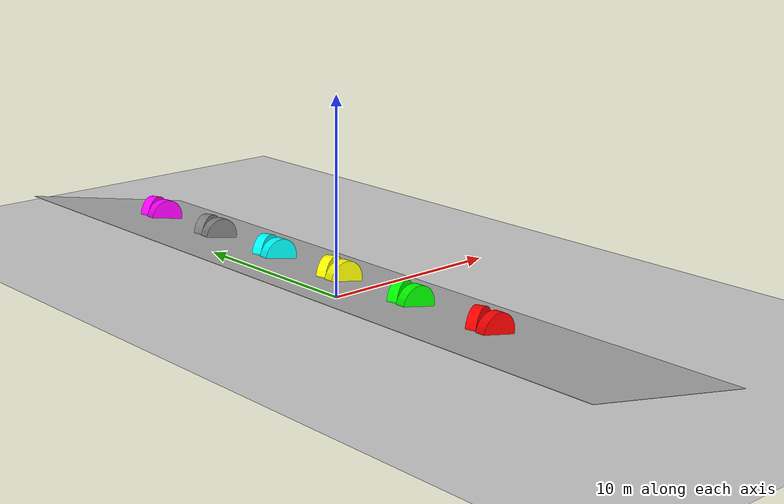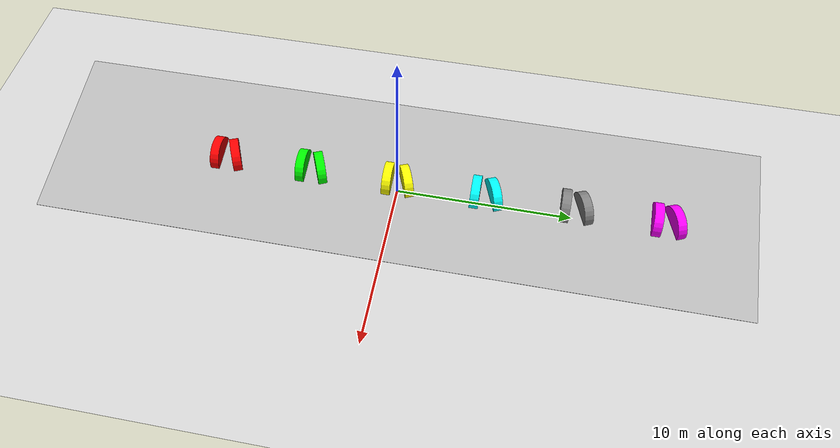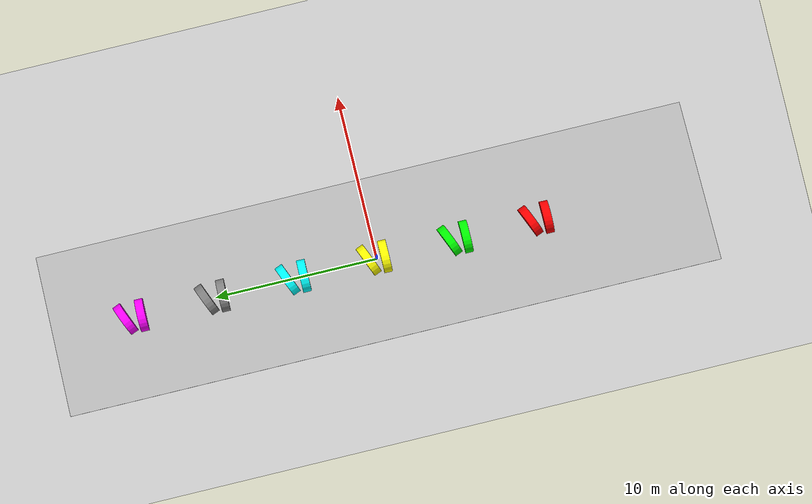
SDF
<?xml version="1.0" ?>
<!-- |    This document was autogenerated by xacro from xacro/friction_wheel_test.xacro | -->
<!-- |    EDITING THIS FILE BY HAND IS NOT RECOMMENDED                                 | -->
<sdf version="1.7">
  <world name="friction_wheel_test">
    <plugin filename="gz-sim-physics-system" name="gz::sim::systems::Physics"/>
    <plugin filename="gz-sim-user-commands-system" name="gz::sim::systems::UserCommands"/>
    <plugin filename="gz-sim-scene-broadcaster-system" name="gz::sim::systems::SceneBroadcaster"/>
    <light name="sun" type="directional">
      <cast_shadows>1</cast_shadows>
      <pose>0 0 10 0 -0 0</pose>
      <diffuse>0.8 0.8 0.8 1</diffuse>
      <specular>0.2 0.2 0.2 1</specular>
      <attenuation>
        <range>1000</range>
        <constant>0.9</constant>
        <linear>0.01</linear>
        <quadratic>0.001</quadratic>
      </attenuation>
      <direction>-0.5 0.1 -0.9</direction>
      <spot>
        <inner_angle>0</inner_angle>
        <outer_angle>0</outer_angle>
        <falloff>0</falloff>
      </spot>
    </light>
    <model name="ground_plane">
      <static>1</static>
      <pose>0 0 0 0 0 0</pose>
      <link name="link">
        <collision name="collision">
          <geometry>
            <plane>
              <normal>0 0 1</normal>
              <size>100 100</size>
            </plane>
          </geometry>
          <surface>
            <friction>
              <ode/>
            </friction>
            <contact/>
          </surface>
        </collision>
        <visual name="visual">
          <geometry>
            <plane>
              <normal>0 0 1</normal>
              <size>100 100</size>
            </plane>
          </geometry>
          <material>
            <ambient>0.8 0.8 0.8 1</ambient>
            <diffuse>0.8 0.8 0.8 1</diffuse>
            <specular>0.8 0.8 0.8 1</specular>
          </material>
        </visual>
      </link>
    </model>
    <model name="ramp">
      <pose>0 0 1 0 0.19634954084936207 0</pose>
      <static>1</static>
      <link name="ramp_link">
        <pose>0 0 0 0 0 0</pose>
        <collision name="ramp_collision">
          <pose relative_to="ramp_link">0 0 0 0 0 0</pose>
          <geometry>
            <box>
              <size>10 40 0.02</size>
            </box>
          </geometry>
          <surface>
            <contact>
              <ode>
                <kp>1e+06</kp>
                <kd>1</kd>
              </ode>
            </contact>
            <friction>
              <ode>
                <mu>1</mu>
                <mu2>1</mu2>
              </ode>
            </friction>
          </surface>
        </collision>
        <visual name="ramp_visual">
          <pose>0 0 0 0 0 0</pose>
          <geometry>
            <box>
              <size>10 40 0.02</size>
            </box>
          </geometry>
          <material>
            <ambient> .3 .3 .3 1.0</ambient>
            <diffuse> .7 .7 .7 1.0</diffuse>
            <specular> 0.01 0.01 0.01 1.000000</specular>
          </material>
        </visual>
        <gravity>0</gravity>
        <velocity_decay/>
      </link>
    </model>
    <model name="wheel_mu_no_fdir">
      <pose relative_to="ramp">0 -10.5 1 1.5707963267948966 0 0</pose>
      <link name="wheel_mu_no_fdir_link">
        <inertial>
          <pose>0 0 0 0 0 0</pose>
          <mass>1</mass>
          <inertia>
            <ixx>0.2708333333333333</ixx>
            <ixy>0</ixy>
            <ixz>0</ixz>
            <iyy>0.2708333333333333</iyy>
            <iyz>0</iyz>
            <izz>0.5</izz>
          </inertia>
        </inertial>
        <collision name="wheel_mu_no_fdir_collision">
          <pose>0 0 0 0 0 0</pose>
          <geometry>
            <cylinder>
              <length>0.5</length>
              <radius>1</radius>
            </cylinder>
          </geometry>
          <surface>
            <contact>
              <ode>
                <kp>1e+06</kp>
                <kd>1</kd>
              </ode>
            </contact>
            <friction>
              <ode>
                <mu>1</mu>
                <mu2>0</mu2>
              </ode>
            </friction>
          </surface>
        </collision>
        <visual name="wheel_mu_no_fdir_visual">
          <pose>0 0 0 0 0 0</pose>
          <geometry>
            <cylinder>
              <length>0.5</length>
              <radius>1</radius>
            </cylinder>
          </geometry>
          <material>
            <ambient>1 0 0 1</ambient>
            <diffuse>1 0 0 1</diffuse>
            <specular> 0.01 0.01 0.01 1.000000</specular>
          </material>
        </visual>
        <gravity>1</gravity>
        <velocity_decay/>
      </link>
    </model>
    <model name="wheel_mu_no_fdir_oriented">
      <pose relative_to="ramp">0 -9.5 1 1.5707963267948966 0 0.39269908169872414</pose>
      <link name="wheel_mu_no_fdir_oriented_link">
        <inertial>
          <pose>0 0 0 0 0 0</pose>
          <mass>1</mass>
          <inertia>
            <ixx>0.2708333333333333</ixx>
            <ixy>0</ixy>
            <ixz>0</ixz>
            <iyy>0.2708333333333333</iyy>
            <iyz>0</iyz>
            <izz>0.5</izz>
          </inertia>
        </inertial>
        <collision name="wheel_mu_no_fdir_oriented_collision">
          <pose>0 0 0 0 0 0</pose>
          <geometry>
            <cylinder>
              <length>0.5</length>
              <radius>1</radius>
            </cylinder>
          </geometry>
          <surface>
            <contact>
              <ode>
                <kp>1e+06</kp>
                <kd>1</kd>
              </ode>
            </contact>
            <friction>
              <ode>
                <mu>1</mu>
                <mu2>0</mu2>
              </ode>
            </friction>
          </surface>
        </collision>
        <visual name="wheel_mu_no_fdir_oriented_visual">
          <pose>0 0 0 0 0 0</pose>
          <geometry>
            <cylinder>
              <length>0.5</length>
              <radius>1</radius>
            </cylinder>
          </geometry>
          <material>
            <ambient>1 0 0 1</ambient>
            <diffuse>1 0 0 1</diffuse>
            <specular> 0.01 0.01 0.01 1.000000</specular>
          </material>
        </visual>
        <gravity>1</gravity>
        <velocity_decay/>
      </link>
    </model>
    <model name="wheel_mu2_no_fdir">
      <pose relative_to="ramp">0 -5.5 1 1.5707963267948966 0 0</pose>
      <link name="wheel_mu2_no_fdir_link">
        <inertial>
          <pose>0 0 0 0 0 0</pose>
          <mass>1</mass>
          <inertia>
            <ixx>0.2708333333333333</ixx>
            <ixy>0</ixy>
            <ixz>0</ixz>
            <iyy>0.2708333333333333</iyy>
            <iyz>0</iyz>
            <izz>0.5</izz>
          </inertia>
        </inertial>
        <collision name="wheel_mu2_no_fdir_collision">
          <pose>0 0 0 0 0 0</pose>
          <geometry>
            <cylinder>
              <length>0.5</length>
              <radius>1</radius>
            </cylinder>
          </geometry>
          <surface>
            <contact>
              <ode>
                <kp>1e+06</kp>
                <kd>1</kd>
              </ode>
            </contact>
            <friction>
              <ode>
                <mu>0</mu>
                <mu2>1</mu2>
              </ode>
            </friction>
          </surface>
        </collision>
        <visual name="wheel_mu2_no_fdir_visual">
          <pose>0 0 0 0 0 0</pose>
          <geometry>
            <cylinder>
              <length>0.5</length>
              <radius>1</radius>
            </cylinder>
          </geometry>
          <material>
            <ambient>0 1 0 1</ambient>
            <diffuse>0 1 0 1</diffuse>
            <specular> 0.01 0.01 0.01 1.000000</specular>
          </material>
        </visual>
        <gravity>1</gravity>
        <velocity_decay/>
      </link>
    </model>
    <model name="wheel_mu2_no_fdir_oriented">
      <pose relative_to="ramp">0 -4.5 1 1.5707963267948966 0 0.39269908169872414</pose>
      <link name="wheel_mu2_no_fdir_oriented_link">
        <inertial>
          <pose>0 0 0 0 0 0</pose>
          <mass>1</mass>
          <inertia>
            <ixx>0.2708333333333333</ixx>
            <ixy>0</ixy>
            <ixz>0</ixz>
            <iyy>0.2708333333333333</iyy>
            <iyz>0</iyz>
            <izz>0.5</izz>
          </inertia>
        </inertial>
        <collision name="wheel_mu2_no_fdir_oriented_collision">
          <pose>0 0 0 0 0 0</pose>
          <geometry>
            <cylinder>
              <length>0.5</length>
              <radius>1</radius>
            </cylinder>
          </geometry>
          <surface>
            <contact>
              <ode>
                <kp>1e+06</kp>
                <kd>1</kd>
              </ode>
            </contact>
            <friction>
              <ode>
                <mu>0</mu>
                <mu2>1</mu2>
              </ode>
            </friction>
          </surface>
        </collision>
        <visual name="wheel_mu2_no_fdir_oriented_visual">
          <pose>0 0 0 0 0 0</pose>
          <geometry>
            <cylinder>
              <length>0.5</length>
              <radius>1</radius>
            </cylinder>
          </geometry>
          <material>
            <ambient>0 1 0 1</ambient>
            <diffuse>0 1 0 1</diffuse>
            <specular> 0.01 0.01 0.01 1.000000</specular>
          </material>
        </visual>
        <gravity>1</gravity>
        <velocity_decay/>
      </link>
    </model>
    <model name="wheel_mu1_mu2_no_fdir">
      <pose relative_to="ramp">0 -0.5 1 1.5707963267948966 0 0</pose>
      <link name="wheel_mu1_mu2_no_fdir_link">
        <inertial>
          <pose>0 0 0 0 0 0</pose>
          <mass>1</mass>
          <inertia>
            <ixx>0.2708333333333333</ixx>
            <ixy>0</ixy>
            <ixz>0</ixz>
            <iyy>0.2708333333333333</iyy>
            <iyz>0</iyz>
            <izz>0.5</izz>
          </inertia>
        </inertial>
        <collision name="wheel_mu1_mu2_no_fdir_collision">
          <pose>0 0 0 0 0 0</pose>
          <geometry>
            <cylinder>
              <length>0.5</length>
              <radius>1</radius>
            </cylinder>
          </geometry>
          <surface>
            <contact>
              <ode>
                <kp>1e+06</kp>
                <kd>1</kd>
              </ode>
            </contact>
            <friction>
              <ode>
                <mu>1</mu>
                <mu2>1</mu2>
              </ode>
            </friction>
          </surface>
        </collision>
        <visual name="wheel_mu1_mu2_no_fdir_visual">
          <pose>0 0 0 0 0 0</pose>
          <geometry>
            <cylinder>
              <length>0.5</length>
              <radius>1</radius>
            </cylinder>
          </geometry>
          <material>
            <ambient>1 1 0 1</ambient>
            <diffuse>1 1 0 1</diffuse>
            <specular> 0.01 0.01 0.01 1.000000</specular>
          </material>
        </visual>
        <gravity>1</gravity>
        <velocity_decay/>
      </link>
    </model>
    <model name="wheel_mu1_mu2_no_fdir_oriented">
      <pose relative_to="ramp">0 0.5 1 1.5707963267948966 0 0.39269908169872414</pose>
      <link name="wheel_mu1_mu2_no_fdir_oriented_link">
        <inertial>
          <pose>0 0 0 0 0 0</pose>
          <mass>1</mass>
          <inertia>
            <ixx>0.2708333333333333</ixx>
            <ixy>0</ixy>
            <ixz>0</ixz>
            <iyy>0.2708333333333333</iyy>
            <iyz>0</iyz>
            <izz>0.5</izz>
          </inertia>
        </inertial>
        <collision name="wheel_mu1_mu2_no_fdir_oriented_collision">
          <pose>0 0 0 0 0 0</pose>
          <geometry>
            <cylinder>
              <length>0.5</length>
              <radius>1</radius>
            </cylinder>
          </geometry>
          <surface>
            <contact>
              <ode>
                <kp>1e+06</kp>
                <kd>1</kd>
              </ode>
            </contact>
            <friction>
              <ode>
                <mu>1</mu>
                <mu2>1</mu2>
              </ode>
            </friction>
          </surface>
        </collision>
        <visual name="wheel_mu1_mu2_no_fdir_oriented_visual">
          <pose>0 0 0 0 0 0</pose>
          <geometry>
            <cylinder>
              <length>0.5</length>
              <radius>1</radius>
            </cylinder>
          </geometry>
          <material>
            <ambient>1 1 0 1</ambient>
            <diffuse>1 1 0 1</diffuse>
            <specular> 0.01 0.01 0.01 1.000000</specular>
          </material>
        </visual>
        <gravity>1</gravity>
        <velocity_decay/>
      </link>
    </model>
    <model name="wheel_mu1_fdir">
      <pose relative_to="ramp">0 4.5 1 1.5707963267948966 0 0</pose>
      <link name="wheel_mu1_fdir_link">
        <inertial>
          <pose>0 0 0 0 0 0</pose>
          <mass>1</mass>
          <inertia>
            <ixx>0.2708333333333333</ixx>
            <ixy>0</ixy>
            <ixz>0</ixz>
            <iyy>0.2708333333333333</iyy>
            <iyz>0</iyz>
            <izz>0.5</izz>
          </inertia>
        </inertial>
        <collision name="wheel_mu1_fdir_collision">
          <pose>0 0 0 0 0 0</pose>
          <geometry>
            <cylinder>
              <length>0.5</length>
              <radius>1</radius>
            </cylinder>
          </geometry>
          <surface>
            <contact>
              <ode>
                <kp>1e+06</kp>
                <kd>1</kd>
              </ode>
            </contact>
            <friction>
              <ode>
                <mu>1</mu>
                <mu2>0</mu2>
                <fdir1>1 0 0</fdir1>
              </ode>
            </friction>
          </surface>
        </collision>
        <visual name="wheel_mu1_fdir_visual">
          <pose>0 0 0 0 0 0</pose>
          <geometry>
            <cylinder>
              <length>0.5</length>
              <radius>1</radius>
            </cylinder>
          </geometry>
          <material>
            <ambient>0 1 1 1</ambient>
            <diffuse>0 1 1 1</diffuse>
            <specular> 0.01 0.01 0.01 1.000000</specular>
          </material>
        </visual>
        <gravity>1</gravity>
        <velocity_decay/>
      </link>
    </model>
    <model name="wheel_mu1_fdir_oriented">
      <pose relative_to="ramp">0 5.5 1 1.5707963267948966 0 0.39269908169872414</pose>
      <link name="wheel_mu1_fdir_oriented_link">
        <inertial>
          <pose>0 0 0 0 0 0</pose>
          <mass>1</mass>
          <inertia>
            <ixx>0.2708333333333333</ixx>
            <ixy>0</ixy>
            <ixz>0</ixz>
            <iyy>0.2708333333333333</iyy>
            <iyz>0</iyz>
            <izz>0.5</izz>
          </inertia>
        </inertial>
        <collision name="wheel_mu1_fdir_oriented_collision">
          <pose>0 0 0 0 0 0</pose>
          <geometry>
            <cylinder>
              <length>0.5</length>
              <radius>1</radius>
            </cylinder>
          </geometry>
          <surface>
            <contact>
              <ode>
                <kp>1e+06</kp>
                <kd>1</kd>
              </ode>
            </contact>
            <friction>
              <ode>
                <mu>1</mu>
                <mu2>0</mu2>
                <fdir1>1 0 0</fdir1>
              </ode>
            </friction>
          </surface>
        </collision>
        <visual name="wheel_mu1_fdir_oriented_visual">
          <pose>0 0 0 0 0 0</pose>
          <geometry>
            <cylinder>
              <length>0.5</length>
              <radius>1</radius>
            </cylinder>
          </geometry>
          <material>
            <ambient>0 1 1 1</ambient>
            <diffuse>0 1 1 1</diffuse>
            <specular> 0.01 0.01 0.01 1.000000</specular>
          </material>
        </visual>
        <gravity>1</gravity>
        <velocity_decay/>
      </link>
    </model>
    <model name="wheel_mu2_fdir">
      <pose relative_to="ramp">0 9.5 1 1.5707963267948966 0 0</pose>
      <link name="wheel_mu2_fdir_link">
        <inertial>
          <pose>0 0 0 0 0 0</pose>
          <mass>1</mass>
          <inertia>
            <ixx>0.2708333333333333</ixx>
            <ixy>0</ixy>
            <ixz>0</ixz>
            <iyy>0.2708333333333333</iyy>
            <iyz>0</iyz>
            <izz>0.5</izz>
          </inertia>
        </inertial>
        <collision name="wheel_mu2_fdir_collision">
          <pose>0 0 0 0 0 0</pose>
          <geometry>
            <cylinder>
              <length>0.5</length>
              <radius>1</radius>
            </cylinder>
          </geometry>
          <surface>
            <contact>
              <ode>
                <kp>1e+06</kp>
                <kd>1</kd>
              </ode>
            </contact>
            <friction>
              <ode>
                <mu>0</mu>
                <mu2>1</mu2>
                <fdir1>1 0 0</fdir1>
              </ode>
            </friction>
          </surface>
        </collision>
        <visual name="wheel_mu2_fdir_visual">
          <pose>0 0 0 0 0 0</pose>
          <geometry>
            <cylinder>
              <length>0.5</length>
              <radius>1</radius>
            </cylinder>
          </geometry>
          <material>
            <ambient>0.5 0.5 0.5 1</ambient>
            <diffuse>0.5 0.5 0.5 1</diffuse>
            <specular> 0.01 0.01 0.01 1.000000</specular>
          </material>
        </visual>
        <gravity>1</gravity>
        <velocity_decay/>
      </link>
    </model>
    <model name="wheel_mu2_fdir_oriented">
      <pose relative_to="ramp">0 10.5 1 1.5707963267948966 0 0.39269908169872414</pose>
      <link name="wheel_mu2_fdir_oriented_link">
        <inertial>
          <pose>0 0 0 0 0 0</pose>
          <mass>1</mass>
          <inertia>
            <ixx>0.2708333333333333</ixx>
            <ixy>0</ixy>
            <ixz>0</ixz>
            <iyy>0.2708333333333333</iyy>
            <iyz>0</iyz>
            <izz>0.5</izz>
          </inertia>
        </inertial>
        <collision name="wheel_mu2_fdir_oriented_collision">
          <pose>0 0 0 0 0 0</pose>
          <geometry>
            <cylinder>
              <length>0.5</length>
              <radius>1</radius>
            </cylinder>
          </geometry>
          <surface>
            <contact>
              <ode>
                <kp>1e+06</kp>
                <kd>1</kd>
              </ode>
            </contact>
            <friction>
              <ode>
                <mu>0</mu>
                <mu2>1</mu2>
                <fdir1>1 0 0</fdir1>
              </ode>
            </friction>
          </surface>
        </collision>
        <visual name="wheel_mu2_fdir_oriented_visual">
          <pose>0 0 0 0 0 0</pose>
          <geometry>
            <cylinder>
              <length>0.5</length>
              <radius>1</radius>
            </cylinder>
          </geometry>
          <material>
            <ambient>0.5 0.5 0.5 1</ambient>
            <diffuse>0.5 0.5 0.5 1</diffuse>
            <specular> 0.01 0.01 0.01 1.000000</specular>
          </material>
        </visual>
        <gravity>1</gravity>
        <velocity_decay/>
      </link>
    </model>
    <model name="wheel_mu1_mu2_fdir">
      <pose relative_to="ramp">0 14.5 1 1.5707963267948966 0 0</pose>
      <link name="wheel_mu1_mu2_fdir_link">
        <inertial>
          <pose>0 0 0 0 0 0</pose>
          <mass>1</mass>
          <inertia>
            <ixx>0.2708333333333333</ixx>
            <ixy>0</ixy>
            <ixz>0</ixz>
            <iyy>0.2708333333333333</iyy>
            <iyz>0</iyz>
            <izz>0.5</izz>
          </inertia>
        </inertial>
        <collision name="wheel_mu1_mu2_fdir_collision">
          <pose>0 0 0 0 0 0</pose>
          <geometry>
            <cylinder>
              <length>0.5</length>
              <radius>1</radius>
            </cylinder>
          </geometry>
          <surface>
            <contact>
              <ode>
                <kp>1e+06</kp>
                <kd>1</kd>
              </ode>
            </contact>
            <friction>
              <ode>
                <mu>1</mu>
                <mu2>1</mu2>
                <fdir1>1 0 0</fdir1>
              </ode>
            </friction>
          </surface>
        </collision>
        <visual name="wheel_mu1_mu2_fdir_visual">
          <pose>0 0 0 0 0 0</pose>
          <geometry>
            <cylinder>
              <length>0.5</length>
              <radius>1</radius>
            </cylinder>
          </geometry>
          <material>
            <ambient>1 0 1 1</ambient>
            <diffuse>1 0 1 1</diffuse>
            <specular> 0.01 0.01 0.01 1.000000</specular>
          </material>
        </visual>
        <gravity>1</gravity>
        <velocity_decay/>
      </link>
    </model>
    <model name="wheel_mu1_mu2_fdir_oriented">
      <pose relative_to="ramp">0 15.5 1 1.5707963267948966 0 0.39269908169872414</pose>
      <link name="wheel_mu1_mu2_fdir_oriented_link">
        <inertial>
          <pose>0 0 0 0 0 0</pose>
          <mass>1</mass>
          <inertia>
            <ixx>0.2708333333333333</ixx>
            <ixy>0</ixy>
            <ixz>0</ixz>
            <iyy>0.2708333333333333</iyy>
            <iyz>0</iyz>
            <izz>0.5</izz>
          </inertia>
        </inertial>
        <collision name="wheel_mu1_mu2_fdir_oriented_collision">
          <pose>0 0 0 0 0 0</pose>
          <geometry>
            <cylinder>
              <length>0.5</length>
              <radius>1</radius>
            </cylinder>
          </geometry>
          <surface>
            <contact>
              <ode>
                <kp>1e+06</kp>
                <kd>1</kd>
              </ode>
            </contact>
            <friction>
              <ode>
                <mu>1</mu>
                <mu2>1</mu2>
                <fdir1>1 0 0</fdir1>
              </ode>
            </friction>
          </surface>
        </collision>
        <visual name="wheel_mu1_mu2_fdir_oriented_visual">
          <pose>0 0 0 0 0 0</pose>
          <geometry>
            <cylinder>
              <length>0.5</length>
              <radius>1</radius>
            </cylinder>
          </geometry>
          <material>
            <ambient>1 0 1 1</ambient>
            <diffuse>1 0 1 1</diffuse>
            <specular> 0.01 0.01 0.01 1.000000</specular>
          </material>
        </visual>
        <gravity>1</gravity>
        <velocity_decay/>
      </link>
    </model>
  </world>
</sdf>
